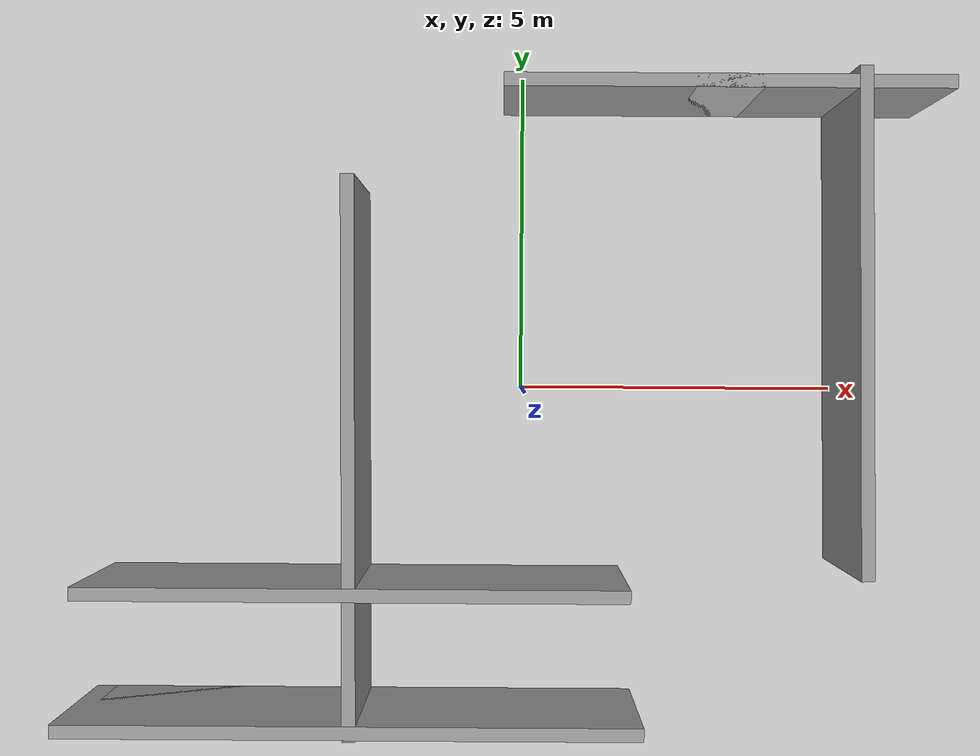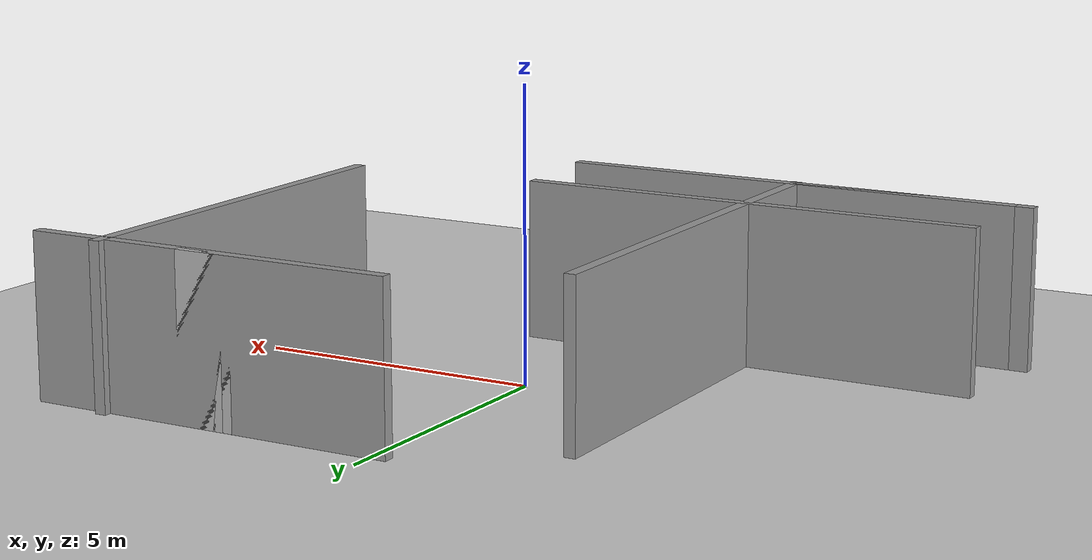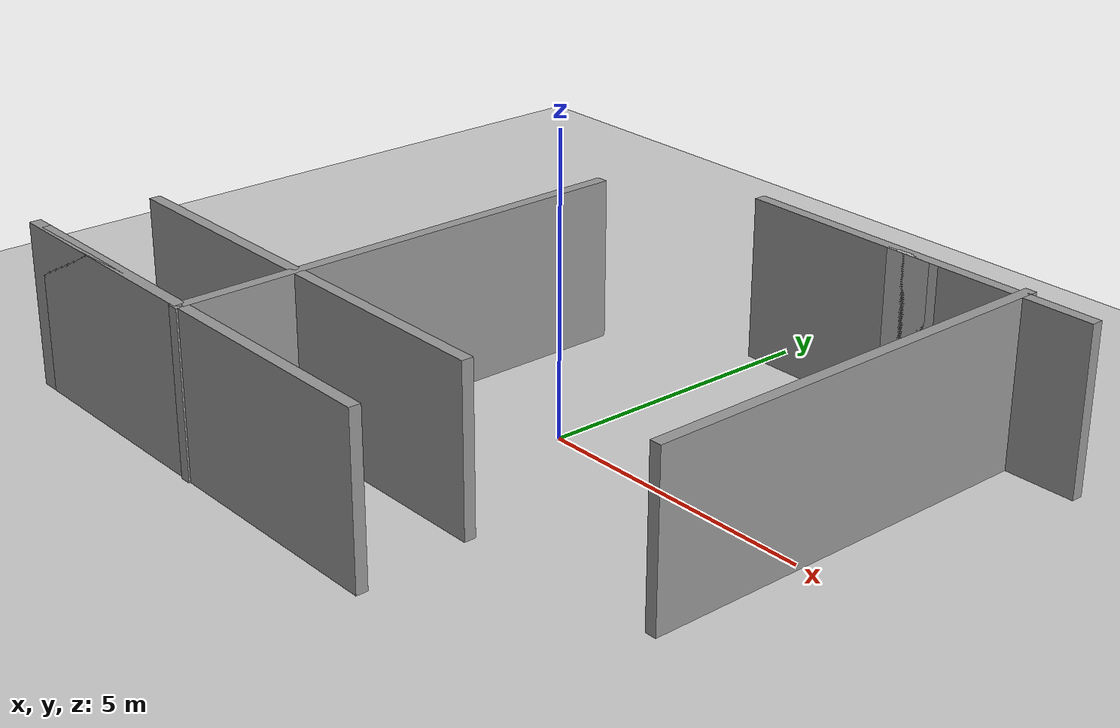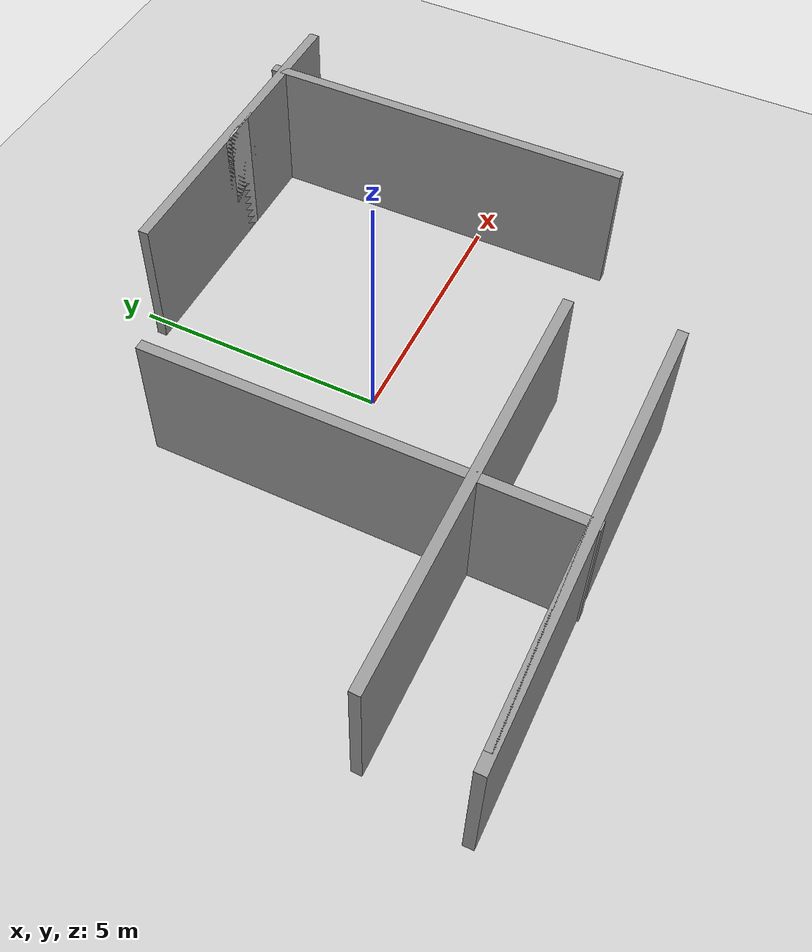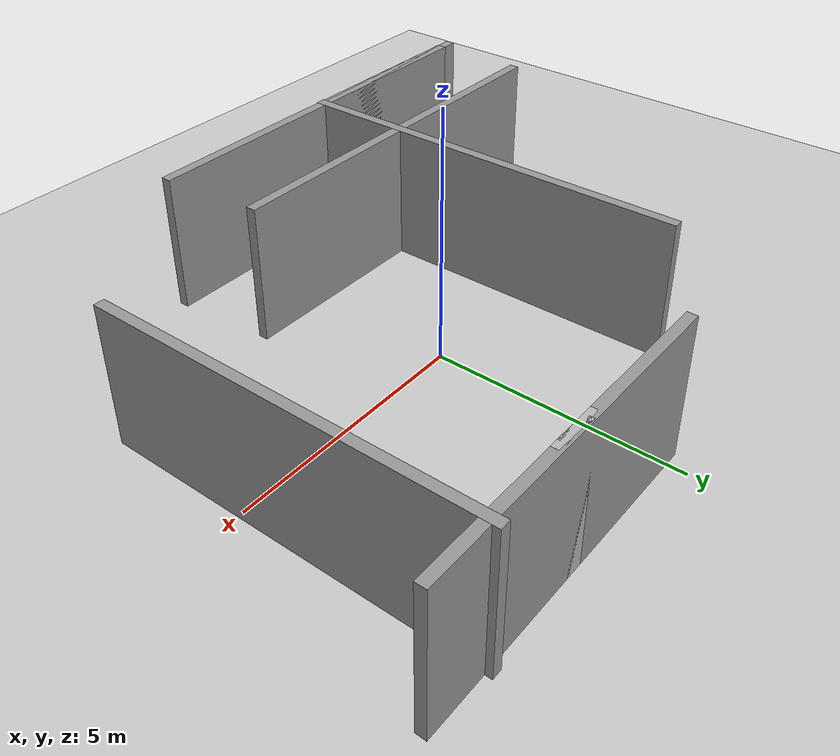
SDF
<sdf version='1.4'>
  <world name='default'>
    <light name='sun' type='directional'>
      <cast_shadows>1</cast_shadows>
      <pose>0 0 10 0 -0 0</pose>
      <diffuse>0.8 0.8 0.8 1</diffuse>
      <specular>0.2 0.2 0.2 1</specular>
      <attenuation>
        <range>1000</range>
        <constant>0.9</constant>
        <linear>0.01</linear>
        <quadratic>0.001</quadratic>
      </attenuation>
      <direction>-0.5 0.1 -0.9</direction>
    </light>
    <model name='ground_plane'>
      <static>1</static>
      <link name='link'>
        <collision name='collision'>
          <geometry>
            <plane>
              <normal>0 0 1</normal>
              <size>100 100</size>
            </plane>
          </geometry>
          <surface>
            <friction>
              <ode>
                <mu>100</mu>
                <mu2>50</mu2>
              </ode>
            </friction>
            <bounce/>
            <contact>
              <ode/>
            </contact>
          </surface>
          <max_contacts>10</max_contacts>
        </collision>
        <visual name='visual'>
          <cast_shadows>0</cast_shadows>
          <geometry>
            <plane>
              <normal>0 0 1</normal>
              <size>100 100</size>
            </plane>
          </geometry>
          <material>
            <script>
              <uri>file://media/materials/scripts/gazebo.material</uri>
              <name>Gazebo/Grey</name>
            </script>
          </material>
        </visual>
        <velocity_decay>
          <linear>0</linear>
          <angular>0</angular>
        </velocity_decay>
        <self_collide>0</self_collide>
        <kinematic>0</kinematic>
        <gravity>1</gravity>
      </link>
    </model>
    <physics type='ode'>
      <max_step_size>0.001</max_step_size>
      <real_time_factor>1</real_time_factor>
      <real_time_update_rate>1000</real_time_update_rate>
      <gravity>0 0 -9.8</gravity>
    </physics>
    <scene>
      <ambient>0.4 0.4 0.4 1</ambient>
      <background>0.7 0.7 0.7 1</background>
      <shadows>1</shadows>
    </scene>
    <spherical_coordinates>
      <surface_model>EARTH_WGS84</surface_model>
      <latitude_deg>0</latitude_deg>
      <longitude_deg>0</longitude_deg>
      <elevation>0</elevation>
      <heading_deg>0</heading_deg>
    </spherical_coordinates>
<!-- 920 OutsideWall-->
    <model name='920_outside_wall'>
      <static>1</static>
      <link name='link'>
        <pose>0 0 1.4 0 -0 0</pose>
        <collision name='collision'>
          <geometry>
            <box>
              <size>8.65 0.2 2.8</size>
            </box>
          </geometry>
          <max_contacts>10</max_contacts>
          <surface>
            <bounce/>
            <friction>
              <ode/>
            </friction>
            <contact>
              <ode/>
            </contact>
          </surface>
        </collision>
        <visual name='visual'>
          <cast_shadows>0</cast_shadows>
          <geometry>
            <box>
              <size>8.65 0.2 2.8</size>
            </box>
          </geometry>
          <material>
            <script>
              <uri>model://grey_wall/materials/scripts</uri>
              <uri>model://grey_wall/materials/textures</uri>
              <name>vrc/grey_wall</name>
            </script>
          </material>
        </visual>
        <velocity_decay>
          <linear>0</linear>
          <angular>0</angular>
        </velocity_decay>
        <self_collide>0</self_collide>
        <kinematic>0</kinematic>
        <gravity>1</gravity>
      </link>
      <pose>-2.53262 -5 0 0 -0 0</pose>
    </model>
<!-- 901 outsideWall -->
    <model name='901_outside_wall'>
      <static>1</static>
      <link name='link'>
        <pose>0 0 1.4 0 -0 0</pose>
        <collision name='collision'>
          <geometry>
            <box>
              <size>8.18 0.2 2.8</size>
            </box>
          </geometry>
          <max_contacts>10</max_contacts>
          <surface>
            <bounce/>
            <friction>
              <ode/>
            </friction>
            <contact>
              <ode/>
            </contact>
          </surface>
        </collision>
        <visual name='visual'>
          <cast_shadows>0</cast_shadows>
          <geometry>
            <box>
              <size>8.18 0.2 2.8</size>
            </box>
          </geometry>
          <material>
            <script>
              <uri>model://grey_wall/materials/scripts</uri>
              <uri>model://grey_wall/materials/textures</uri>
              <name>vrc/grey_wall</name>
            </script>
          </material>
        </visual>
        <velocity_decay>
          <linear>0</linear>
          <angular>0</angular>
        </velocity_decay>
        <self_collide>0</self_collide>
        <kinematic>0</kinematic>
        <gravity>1</gravity>
      </link>
      <pose>-2.49784 -3 0 0 -0 0</pose>
    </model>
<!--Elevator Side Wall-->
    <model name='ElevatorSideWall'>
      <static>1</static>
      <link name='link'>
        <pose>0 0 1.4 0 -0 1.58</pose>
        <collision name='collision'>
          <geometry>
            <box>
              <size>8.26 0.2 2.8</size>
            </box>
          </geometry>
          <max_contacts>10</max_contacts>
          <surface>
            <bounce/>
            <friction>
              <ode/>
            </friction>
            <contact>
              <ode/>
            </contact>
          </surface>
        </collision>
        <visual name='visual'>
          <cast_shadows>0</cast_shadows>
          <geometry>
            <box>
              <size>8.26 0.2 2.8</size>
            </box>
          </geometry>
          <material>
            <script>
              <uri>model://grey_wall/materials/scripts</uri>
              <uri>model://grey_wall/materials/textures</uri>
              <name>vrc/grey_wall</name>
            </script>
          </material>
        </visual>
        <velocity_decay>
          <linear>0</linear>
          <angular>0</angular>
        </velocity_decay>
        <self_collide>0</self_collide>
        <kinematic>0</kinematic>
        <gravity>1</gravity>
      </link>
      <pose>-2.53835 -1 0 0 -0 0</pose>
    </model>
<!-- BalconySideWall-->
    <model name='BalconySideWall'>
      <static>1</static>
      <link name='link'>
        <pose>0 0 1.4 0 -0 1.58</pose>
        <collision name='collision'>
          <geometry>
            <box>
              <size>7.5 0.2 2.8</size>
            </box>
          </geometry>
          <max_contacts>10</max_contacts>
          <surface>
            <bounce/>
            <friction>
              <ode/>
            </friction>
            <contact>
              <ode/>
            </contact>
          </surface>
        </collision>
        <visual name='visual'>
          <cast_shadows>0</cast_shadows>
          <geometry>
            <box>
              <size>7.5 0.2 2.8</size>
            </box>
          </geometry>
          <material>
            <script>
              <uri>model://grey_wall/materials/scripts</uri>
              <uri>model://grey_wall/materials/textures</uri>
              <name>vrc/grey_wall</name>
            </script>
          </material>
        </visual>
        <velocity_decay>
          <linear>0</linear>
          <angular>0</angular>
        </velocity_decay>
        <self_collide>0</self_collide>
        <kinematic>0</kinematic>
        <gravity>1</gravity>
      </link>
      <pose>5 1 0 0 -0 0</pose>
    </model>
<!--AisleSideWall_901-->
    <model name='AisleSideWall'>
      <static>1</static>
      <link name='link'>
        <pose>0 0 1.4 0 -0 0</pose>
        <collision name='collision'>
          <geometry>
            <box>
              <size>4.02 0.2 2.8</size>
            </box>
          </geometry>
          <max_contacts>10</max_contacts>
          <surface>
            <bounce/>
            <friction>
              <ode/>
            </friction>
            <contact>
              <ode/>
            </contact>
          </surface>
        </collision>
        <visual name='visual'>
          <cast_shadows>0</cast_shadows>
          <geometry>
            <box>
              <size>4.02 0.2 2.8</size>
            </box>
          </geometry>
          <material>
            <script>
              <uri>model://grey_wall/materials/scripts</uri>
              <uri>model://grey_wall/materials/textures</uri>
              <name>vrc/grey_wall</name>
            </script>
          </material>
        </visual>
        <velocity_decay>
          <linear>0</linear>
          <angular>0</angular>
        </velocity_decay>
        <self_collide>0</self_collide>
        <kinematic>0</kinematic>
        <gravity>1</gravity>
      </link>
      <pose>-4.5188 -5 0 0 -0 0</pose>
    </model>
<!--AisleSideWall_920-->
    <model name='AisleSideWall_920'>
      <static>1</static>
      <link name='link'>
        <pose>0 0 1.4 0 -0 0</pose>
        <collision name='collision'>
          <geometry>
            <box>
              <size>6.6 0.2 2.8</size>
            </box>
          </geometry>
          <max_contacts>10</max_contacts>
          <surface>
            <bounce/>
            <friction>
              <ode/>
            </friction>
            <contact>
              <ode/>
            </contact>
          </surface>
        </collision>
        <visual name='visual'>
          <cast_shadows>0</cast_shadows>
          <geometry>
            <box>
              <size>6.6 0.2 2.8</size>
            </box>
          </geometry>
          <material>
            <script>
              <uri>model://grey_wall/materials/scripts</uri>
              <uri>model://grey_wall/materials/textures</uri>
              <name>vrc/grey_wall</name>
            </script>
          </material>
        </visual>
        <velocity_decay>
          <linear>0</linear>
          <angular>0</angular>
        </velocity_decay>
        <self_collide>0</self_collide>
        <kinematic>0</kinematic>
        <gravity>1</gravity>
      </link>
      <pose>3 4.52028 0 0 -0 0</pose>
    </model>
<!--Door-->
    <model name='Door'>
      <static>1</static>
      <link name='link'>
        <pose>0 0 1.4 0 -0 0</pose>
        <collision name='collision'>
          <geometry>
            <box>
              <size>1.0 0.2 2.8</size>
            </box>
          </geometry>
          <max_contacts>10</max_contacts>
          <surface>
            <bounce/>
            <friction>
              <ode/>
            </friction>
            <contact>
              <ode/>
            </contact>
          </surface>
        </collision>
        <visual name='visual'>
          <cast_shadows>0</cast_shadows>
          <geometry>
            <box>
              <size>1.0 0.2 2.8</size>
            </box>
          </geometry>
          <material>
            <script>
            </script>
          </material>
        </visual>
        <velocity_decay>
          <linear>0</linear>
          <angular>0</angular>
        </velocity_decay>
        <self_collide>0</self_collide>
        <kinematic>0</kinematic>
        <gravity>1</gravity>
      </link>
      <pose>3 4.52028 0 0 -0 0</pose>
    </model>
<!--AisleSideSmallWall-->
    <model name='AisleSideSmallWall'>
      <static>1</static>
      <link name='link'>
        <pose>0 0 1.4 0 -0 0</pose>
        <collision name='collision'>
          <geometry>
            <box>
              <size>0.66 0.2 2.8</size>
            </box>
          </geometry>
          <max_contacts>10</max_contacts>
          <surface>
            <bounce/>
            <friction>
              <ode/>
            </friction>
            <contact>
              <ode/>
            </contact>
          </surface>
        </collision>
        <visual name='visual'>
          <cast_shadows>0</cast_shadows>
          <geometry>
            <box>
              <size>0.66 0.2 2.8</size>
            </box>
          </geometry>
          <material>
            <script>
            </script>
          </material>
        </visual>
        <velocity_decay>
          <linear>0</linear>
          <angular>0</angular>
        </velocity_decay>
        <self_collide>0</self_collide>
        <kinematic>0</kinematic>
        <gravity>1</gravity>
      </link>
      <pose>3 4.52028 0 0 -0 0</pose>
    </model>
    <gui fullscreen='0'>
      <camera name='user_camera'>
        <pose>0.59881 -4.06701 27.182 -2.2526e-16 1.3218 2.2322</pose>
        <view_controller>orbit</view_controller>
      </camera>
    </gui>
  </world>
</sdf>
